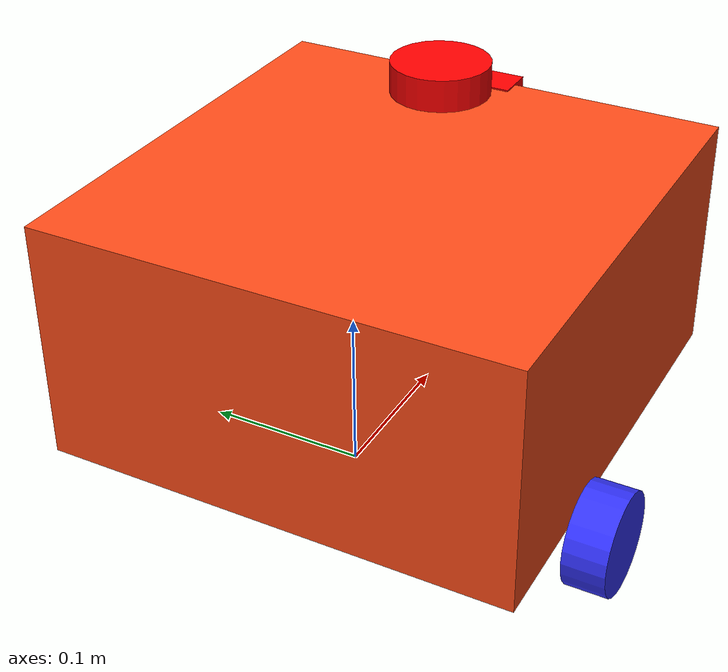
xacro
<?xml version="1.0"?>
<robot xmlns:xacro="http://www.ros.org/wiki/xacro"  name="robot">

    <xacro:arg name="use_ros2_control" default="true"/>

    <xacro:include filename="robot_core.xacro" />

    <xacro:if value="$(arg use_ros2_control)">
        <xacro:include filename="ros2_control.xacro" />
    </xacro:if>
    <xacro:unless value="$(arg use_ros2_control)">
        <xacro:include filename="gazebo_control.xacro" />
    </xacro:unless>
    <xacro:include filename="lidar.xacro" />
    <xacro:include filename="camera.xacro" />

</robot>

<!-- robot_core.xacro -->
<robot xmlns:xacro="http://www.ros.org/wiki/xacro" >

    <xacro:include filename="inertial_macros.xacro"/>

    <xacro:property name="chassis_length" value="0.3"/>
    <xacro:property name="chassis_width" value="0.3"/>
    <xacro:property name="chassis_height" value="0.154"/>
    <xacro:property name="chassis_mass" value="2.25"/>
    <xacro:property name="wheel_radius" value="0.0325"/>
    <xacro:property name="wheel_thickness" value="0.027"/>
    <xacro:property name="wheel_mass" value="0.05"/>
    <xacro:property name="wheel_offset_x" value="0.1"/>
    <xacro:property name="wheel_offset_y" value="0.1635"/>
    <xacro:property name="wheel_offset_z" value="-0.02"/>
    <xacro:property name="caster_wheel_radius" value="0.01"/>
    <xacro:property name="caster_wheel_mass" value="0.01"/>
    <xacro:property name="caster_wheel_offset_x" value="0.25"/>
    <xacro:property name="caster_wheel_offset_z" value="${wheel_offset_z - wheel_radius + caster_wheel_radius}"/>

    <material name="white">
        <color rgba="1 1 1 1" />

    </material>

    <material name="orange">
        <color rgba="1 0.3 0.1 1"/>
    </material>

    <material name="blue">
        <color rgba="0.2 0.2 1 1"/>
    </material>

    <material name="black">
        <color rgba="0 0 0 1"/>
    </material>

    <material name="red">
        <color rgba="1 0 0 1"/>
    </material>

    <!-- BASE LINK -->

    <link name="base_link">

    </link>

    <!-- CHASSIS LINK -->

    <joint name="chassis_joint" type="fixed">
        <parent link="base_link"/>
        <child link="chassis"/>
        <origin xyz="${-wheel_offset_x} 0 ${-wheel_offset_z}"/>
    </joint>

    <link name="chassis">
        <visual>
            <origin xyz="${chassis_length/2} 0 ${chassis_height/2}"/>
            <geometry>
                <box size="${chassis_length} ${chassis_width} ${chassis_height}"/>
            </geometry>
            <material name="orange"/>
        </visual>
        <collision>
            <origin xyz="${chassis_length/2} 0 ${chassis_height/2}"/>
            <geometry>
                <box size="${chassis_length} ${chassis_width} ${chassis_height}"/>
            </geometry>
        </collision>
        <xacro:inertial_box mass="${chassis_mass}" x="${chassis_length}" y="${chassis_width}" z="${chassis_height}">
            <origin xyz="${chassis_length/2} 0 ${chassis_height/2}" rpy="0 0 0"/>
        </xacro:inertial_box>
    </link>

    <gazebo reference="chassis">
        <material>Gazebo/Orange</material>
    </gazebo>

    <!-- LEFT WHEEL LINK -->

    <joint name="left_wheel_joint" type="continuous">
        <parent link="base_link"/>
        <child link="left_wheel"/>
        <origin xyz="0 ${wheel_offset_y} 0" rpy="-${pi/2} 0 0" />
        <axis xyz="0 0 1"/>
    </joint>

    <link name="left_wheel">
        <visual>
            <geometry>
                <cylinder radius="${wheel_radius}" length="${wheel_thickness}"/>
            </geometry>
            <material name="blue"/>
        </visual>
        <collision>
            <geometry>
                <sphere radius="${wheel_radius}"/>
            </geometry>
        </collision>
        <xacro:inertial_cylinder mass="${wheel_mass}" length="${wheel_thickness}" radius="${wheel_radius}">
            <origin xyz="0 0 0" rpy="0 0 0"/>
        </xacro:inertial_cylinder>
    </link>

    <gazebo reference="left_wheel">
        <material>Gazebo/Blue</material>
    </gazebo>

    <!-- RIGHT WHEEL LINK -->

    <joint name="right_wheel_joint" type="continuous">
        <parent link="base_link"/>
        <child link="right_wheel"/>
        <origin xyz="0 ${-wheel_offset_y} 0" rpy="${pi/2} 0 0" />
        <axis xyz="0 0 -1"/>
    </joint>

    <link name="right_wheel">
        <visual>
            <geometry>
                <cylinder radius="${wheel_radius}" length="${wheel_thickness}"/>
            </geometry>
            <material name="blue"/>
        </visual>
        <collision>
            <geometry>
                <sphere radius="${wheel_radius}"/>
            </geometry>
        </collision>
        <xacro:inertial_cylinder mass="${wheel_mass}" length="${wheel_thickness}" radius="${wheel_radius}">
            <origin xyz="0 0 0" rpy="0 0 0"/>
        </xacro:inertial_cylinder>
    </link>

    <gazebo reference="right_wheel">
        <material>Gazebo/Blue</material>
    </gazebo>

    <!-- CASTER WHEEL LINK -->

    <joint name="caster_wheel_joint" type="fixed">
        <parent link="chassis"/>
        <child link="caster_wheel"/>
        <origin xyz="${caster_wheel_offset_x} 0 ${caster_wheel_offset_z}"/>
    </joint>

    <link name="caster_wheel">
        <visual>
            <geometry>
                <sphere radius="${caster_wheel_radius}"/>
            </geometry>
            <material name="red"/>
        </visual>
        <collision>
            <geometry>
                <sphere radius="${caster_wheel_radius}"/>
            </geometry>
        </collision>
        <xacro:inertial_sphere mass="${caster_wheel_mass}" radius="${caster_wheel_radius}">
            <origin xyz="0 0 0" rpy="0 0 0"/>
        </xacro:inertial_sphere>
    </link>

    <gazebo reference="caster_wheel">
        <material>Gazebo/Red</material>
        <mu1 value="0.001"/>
        <mu2 value="0.001"/>
    </gazebo>

</robot>

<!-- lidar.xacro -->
<robot xmlns:xacro="http://www.ros.org/wiki/xacro" >

    <joint name="laser_joint" type="fixed">
        <parent link="chassis"/>
        <child link="laser_frame"/>
        <origin xyz="0.212 0 0.192" rpy="0 0 0"/>
    </joint>

    <link name="laser_frame">
        <visual>
            <geometry>
                <cylinder radius="0.031" length="0.02"/>
            </geometry>
            <material name="red"/>
        </visual>

        <collision>
            <geometry>
                <cylinder radius="0.031" length="0.018"/>
            </geometry>
        </collision>
        <xacro:inertial_cylinder mass="0.125" length="0.018" radius="0.048">
            <origin xyz="0 0 0" rpy="0 0 0"/>
        </xacro:inertial_cylinder>
    </link>

    <gazebo reference="laser_frame">
        <material>Gazebo/Black</material>

        <sensor name="laser" type="ray">
            <pose> 0 0 0 0 0 0 </pose>
            <visualize>false</visualize>
            <update_rate>5</update_rate>
            <ray>
                <scan>
                    <horizontal>
                        <samples>360</samples>
                        <min_angle>-3.14</min_angle>
                        <max_angle>3.14</max_angle>
                    </horizontal>
                </scan>
                <range>
                    <min>0.12</min>
                    <max>3.5</max>
                </range>

                <noise>
                    <type>gaussian</type>
                    <mean>0.0</mean>
                    <stddev>0.01</stddev>          <!-- Mô phỏng sai số ±10mm -->
                </noise>

            </ray>
            <plugin name="laser_controller" filename="libgazebo_ros_ray_sensor.so">
                <ros>
                    <argument>~/out:=scan</argument>
                </ros>
                <output_type>sensor_msgs/LaserScan</output_type>
                <frame_name>laser_frame</frame_name>
            </plugin>
        </sensor>
    </gazebo>

</robot>

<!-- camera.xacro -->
<robot xmlns:xacro="http://www.ros.org/wiki/xacro" >

    <joint name="camera_joint" type="fixed">
        <parent link="chassis"/>
        <child link="camera_link"/>
        <origin xyz="0.3 0 0.13" rpy="0 0 0"/>
    </joint>

    <link name="camera_link">
        <visual>
            <geometry>
                <box size="0.025 0.025 0.05"/>
            </geometry>
            <material name="red"/>
        </visual>

    </link>

    <joint name="camera_optical_joint" type="fixed">
        <parent link="camera_link"/>
        <child link="camera_link_optical"/>
        <origin xyz="0 0 0" rpy="${-pi/2} 0 ${-pi/2}"/>
    </joint>

    <link name="camera_link_optical"></link>

    <gazebo reference="camera_link">
        <material>Gazebo/Black</material>

        <sensor name="camera" type="camera">
            <pose> 0 0 0 0 0 0 </pose>
            <visualize>true</visualize>
            <update_rate>10</update_rate>
            <camera>
                <horizontal_fov>1.089</horizontal_fov>
                <image>
                    <format>R8G8B8</format>
                    <width>640</width>
                    <height>480</height>
                </image>
                <clip>
                    <near>0.12</near>
                    <far> 3.5 </far>
                </clip>
            </camera>
            <plugin name="camera_controller" filename="libgazebo_ros_camera.so">
                <frame_name>camera_link_optical</frame_name>
            </plugin>
        </sensor>
    </gazebo>

</robot>
